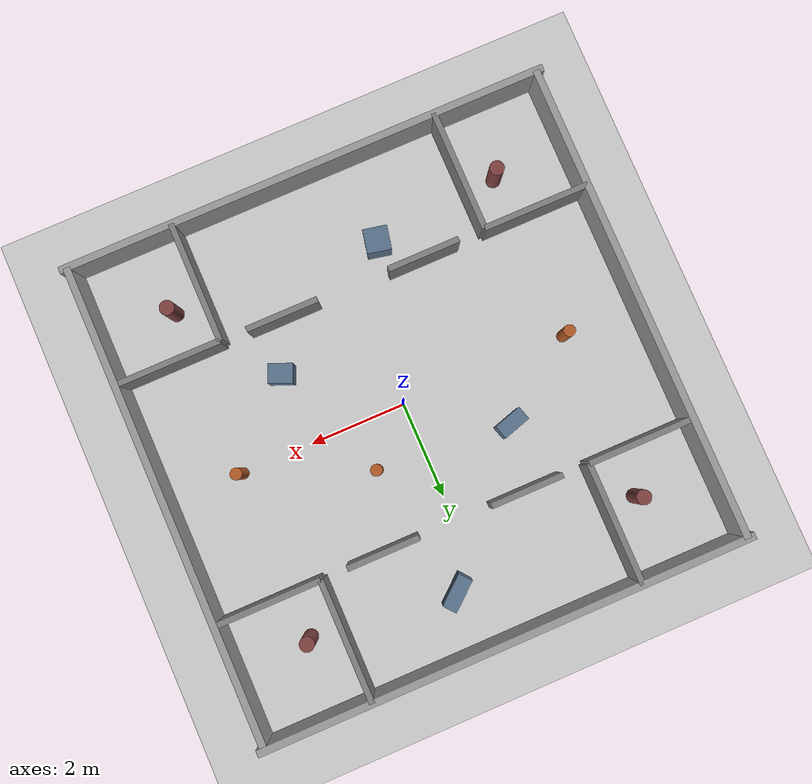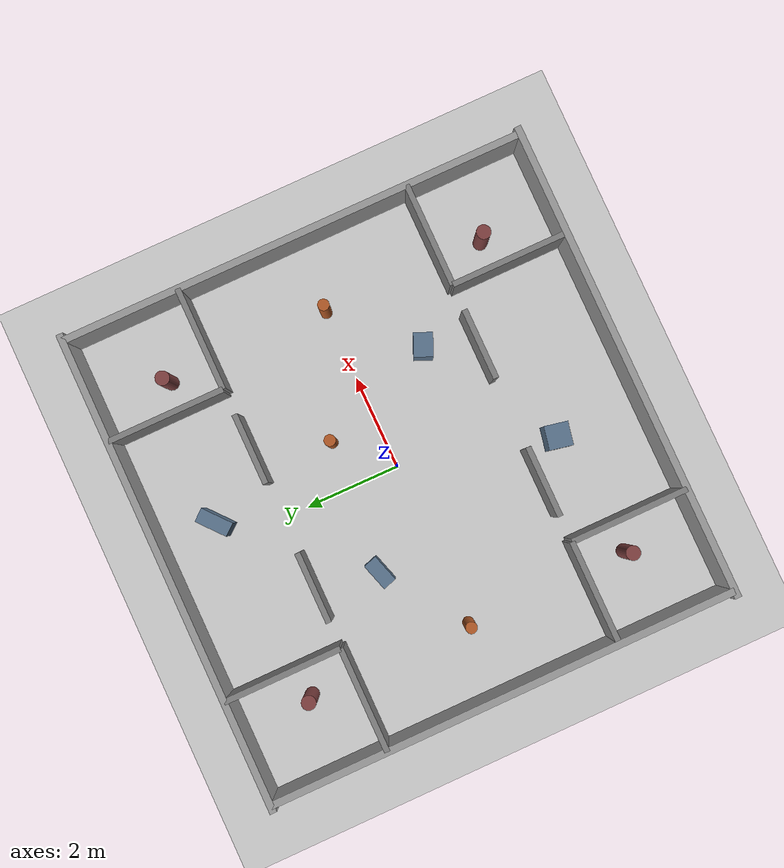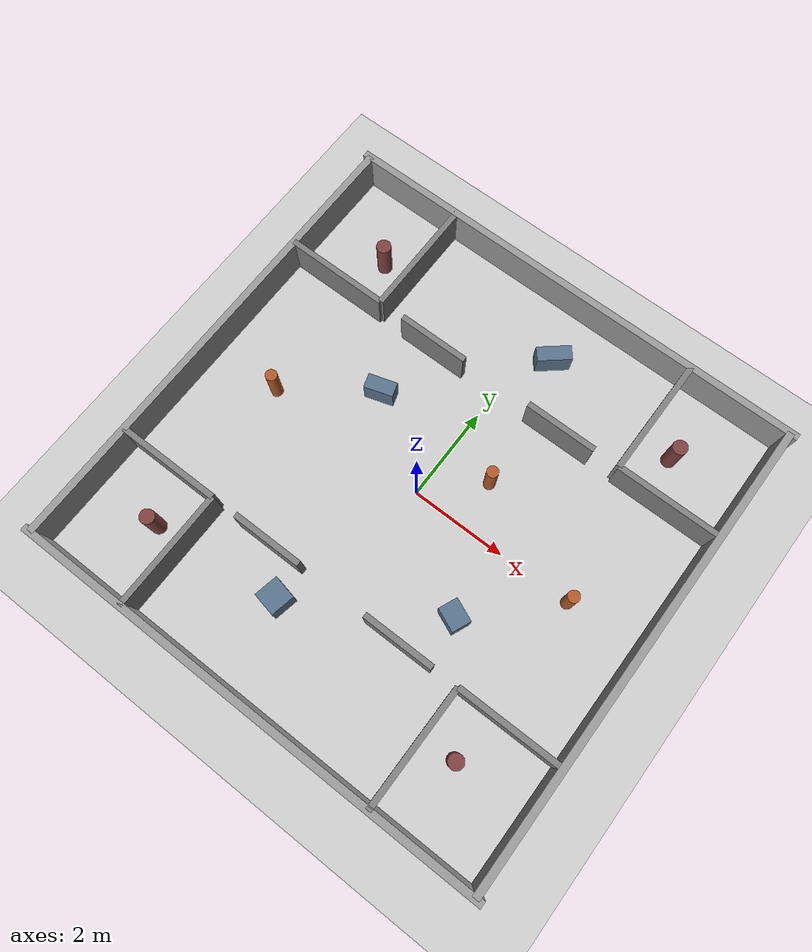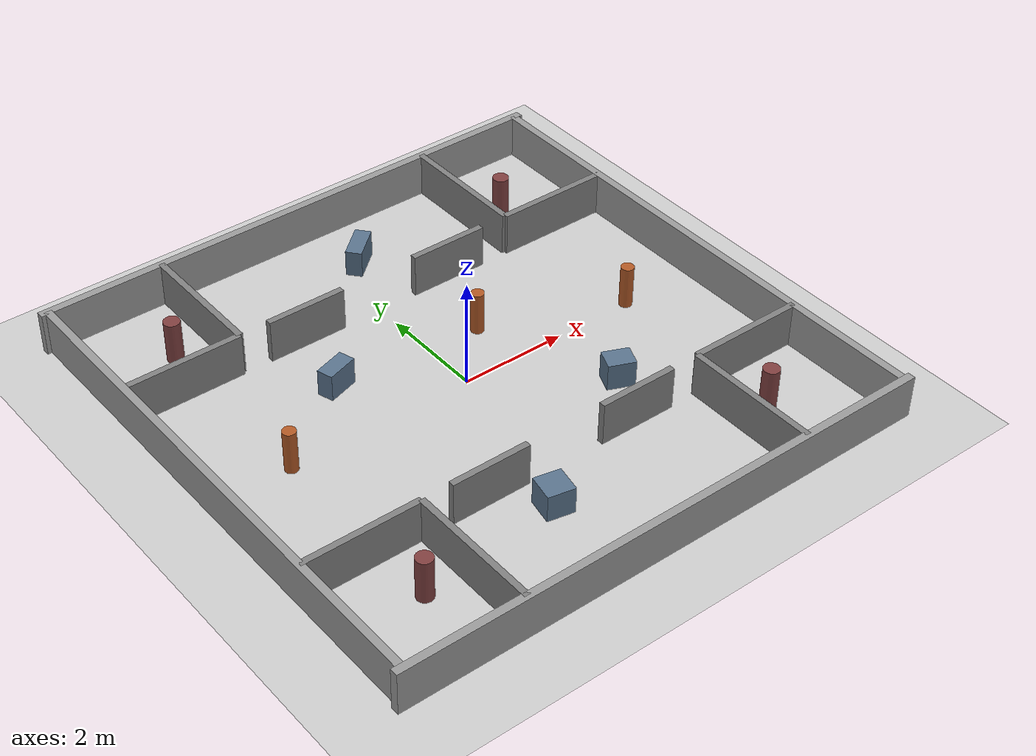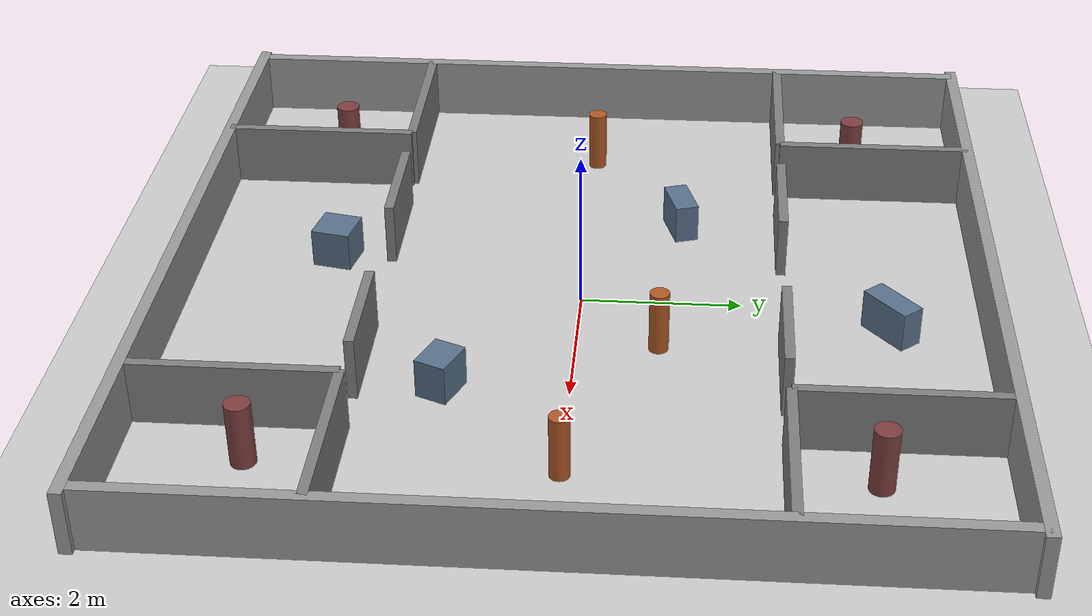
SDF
<?xml version="1.0"?>
<sdf version="1.6">
  <world name="static_arena">
    <!-- Same arena layout as tubitak phase3_arena: 10x10m with static obstacles -->

    <physics type="ode">
      <real_time_update_rate>1000</real_time_update_rate>
      <max_step_size>0.001</max_step_size>
      <real_time_factor>1</real_time_factor>
      <ode>
        <solver>
          <type>quick</type>
          <iters>150</iters>
          <sor>1.4</sor>
          <use_dynamic_moi_rescaling>1</use_dynamic_moi_rescaling>
        </solver>
      </ode>
    </physics>

    <plugin name="gazebo_ros_state" filename="libgazebo_ros_state.so">
      <update_rate>25</update_rate>
    </plugin>

    <scene>
      <shadows>0</shadows>
      <ambient>0.4 0.4 0.4 1</ambient>
      <background>0.7 0.7 0.7 1</background>
    </scene>

    <light name="sun" type="directional">
      <cast_shadows>1</cast_shadows>
      <pose>0 0 10 0 0 0</pose>
      <diffuse>0.8 0.8 0.8 1</diffuse>
      <specular>0.2 0.2 0.2 1</specular>
      <direction>-0.5 0.1 -0.9</direction>
    </light>

    <gui fullscreen="0">
      <camera name="user_camera">
        <pose>0 -12 20 0 1.0 1.57</pose>
        <view_controller>orbit</view_controller>
      </camera>
    </gui>

    <!-- Ground plane -->
    <model name="ground_plane">
      <static>true</static>
      <link name="link">
        <collision name="collision">
          <geometry><plane><normal>0 0 1</normal><size>100 100</size></plane></geometry>
          <surface><friction><ode><mu>100</mu><mu2>50</mu2></ode></friction></surface>
        </collision>
        <visual name="visual">
          <cast_shadows>0</cast_shadows>
          <geometry><plane><normal>0 0 1</normal><size>100 100</size></plane></geometry>
          <material>
            <ambient>0.8 0.8 0.8 1</ambient>
            <diffuse>0.8 0.8 0.8 1</diffuse>
          </material>
        </visual>
      </link>
    </model>

    <!-- ══════════════ Outer walls (10x10m arena) ══════════════ -->
    <model name="wN">
      <static>true</static>
      <pose>0 5 0.4 0 0 0</pose>
      <link name="l">
        <collision name="c"><geometry><box><size>10.3 0.15 0.8</size></box></geometry></collision>
        <visual name="v">
          <geometry><box><size>10.3 0.15 0.8</size></box></geometry>
          <material><ambient>0.6 0.6 0.6 1</ambient><diffuse>0.6 0.6 0.6 1</diffuse></material>
        </visual>
      </link>
    </model>

    <model name="wS">
      <static>true</static>
      <pose>0 -5 0.4 0 0 0</pose>
      <link name="l">
        <collision name="c"><geometry><box><size>10.3 0.15 0.8</size></box></geometry></collision>
        <visual name="v">
          <geometry><box><size>10.3 0.15 0.8</size></box></geometry>
          <material><ambient>0.6 0.6 0.6 1</ambient><diffuse>0.6 0.6 0.6 1</diffuse></material>
        </visual>
      </link>
    </model>

    <model name="wE">
      <static>true</static>
      <pose>5 0 0.4 0 0 0</pose>
      <link name="l">
        <collision name="c"><geometry><box><size>0.15 10 0.8</size></box></geometry></collision>
        <visual name="v">
          <geometry><box><size>0.15 10 0.8</size></box></geometry>
          <material><ambient>0.6 0.6 0.6 1</ambient><diffuse>0.6 0.6 0.6 1</diffuse></material>
        </visual>
      </link>
    </model>

    <model name="wW">
      <static>true</static>
      <pose>-5 0 0.4 0 0 0</pose>
      <link name="l">
        <collision name="c"><geometry><box><size>0.15 10 0.8</size></box></geometry></collision>
        <visual name="v">
          <geometry><box><size>0.15 10 0.8</size></box></geometry>
          <material><ambient>0.6 0.6 0.6 1</ambient><diffuse>0.6 0.6 0.6 1</diffuse></material>
        </visual>
      </link>
    </model>

    <!-- ══════════════ Diagonal divider walls (upper half) ══════════════ -->
    <model name="dU_L">
      <static>true</static>
      <pose>-3.9 2.5 0.4 0 0 0</pose>
      <link name="l">
        <collision name="c"><geometry><box><size>2.2 0.12 0.8</size></box></geometry></collision>
        <visual name="v">
          <geometry><box><size>2.2 0.12 0.8</size></box></geometry>
          <material><ambient>0.5 0.5 0.5 1</ambient><diffuse>0.5 0.5 0.5 1</diffuse></material>
        </visual>
      </link>
    </model>

    <model name="dU_R">
      <static>true</static>
      <pose>3.9 2.5 0.4 0 0 0</pose>
      <link name="l">
        <collision name="c"><geometry><box><size>2.2 0.12 0.8</size></box></geometry></collision>
        <visual name="v">
          <geometry><box><size>2.2 0.12 0.8</size></box></geometry>
          <material><ambient>0.5 0.5 0.5 1</ambient><diffuse>0.5 0.5 0.5 1</diffuse></material>
        </visual>
      </link>
    </model>

    <model name="dU_CL">
      <static>true</static>
      <pose>-1.5 2.5 0.4 0 0 0</pose>
      <link name="l">
        <collision name="c"><geometry><box><size>1.5 0.12 0.8</size></box></geometry></collision>
        <visual name="v">
          <geometry><box><size>1.5 0.12 0.8</size></box></geometry>
          <material><ambient>0.5 0.5 0.5 1</ambient><diffuse>0.5 0.5 0.5 1</diffuse></material>
        </visual>
      </link>
    </model>

    <model name="dU_CR">
      <static>true</static>
      <pose>1.5 2.5 0.4 0 0 0</pose>
      <link name="l">
        <collision name="c"><geometry><box><size>1.5 0.12 0.8</size></box></geometry></collision>
        <visual name="v">
          <geometry><box><size>1.5 0.12 0.8</size></box></geometry>
          <material><ambient>0.5 0.5 0.5 1</ambient><diffuse>0.5 0.5 0.5 1</diffuse></material>
        </visual>
      </link>
    </model>

    <!-- ══════════════ Diagonal divider walls (lower half) ══════════════ -->
    <model name="dD_L">
      <static>true</static>
      <pose>-3.9 -2.5 0.4 0 0 0</pose>
      <link name="l">
        <collision name="c"><geometry><box><size>2.2 0.12 0.8</size></box></geometry></collision>
        <visual name="v">
          <geometry><box><size>2.2 0.12 0.8</size></box></geometry>
          <material><ambient>0.5 0.5 0.5 1</ambient><diffuse>0.5 0.5 0.5 1</diffuse></material>
        </visual>
      </link>
    </model>

    <model name="dD_R">
      <static>true</static>
      <pose>3.9 -2.5 0.4 0 0 0</pose>
      <link name="l">
        <collision name="c"><geometry><box><size>2.2 0.12 0.8</size></box></geometry></collision>
        <visual name="v">
          <geometry><box><size>2.2 0.12 0.8</size></box></geometry>
          <material><ambient>0.5 0.5 0.5 1</ambient><diffuse>0.5 0.5 0.5 1</diffuse></material>
        </visual>
      </link>
    </model>

    <model name="dD_CL">
      <static>true</static>
      <pose>-1.5 -2.5 0.4 0 0 0</pose>
      <link name="l">
        <collision name="c"><geometry><box><size>1.5 0.12 0.8</size></box></geometry></collision>
        <visual name="v">
          <geometry><box><size>1.5 0.12 0.8</size></box></geometry>
          <material><ambient>0.5 0.5 0.5 1</ambient><diffuse>0.5 0.5 0.5 1</diffuse></material>
        </visual>
      </link>
    </model>

    <model name="dD_CR">
      <static>true</static>
      <pose>1.5 -2.5 0.4 0 0 0</pose>
      <link name="l">
        <collision name="c"><geometry><box><size>1.5 0.12 0.8</size></box></geometry></collision>
        <visual name="v">
          <geometry><box><size>1.5 0.12 0.8</size></box></geometry>
          <material><ambient>0.5 0.5 0.5 1</ambient><diffuse>0.5 0.5 0.5 1</diffuse></material>
        </visual>
      </link>
    </model>

    <!-- ══════════════ Inner corridor walls ══════════════ -->
    <model name="iU_L">
      <static>true</static>
      <pose>-2.8 3.75 0.4 0 0 0</pose>
      <link name="l">
        <collision name="c"><geometry><box><size>0.12 2.5 0.8</size></box></geometry></collision>
        <visual name="v">
          <geometry><box><size>0.12 2.5 0.8</size></box></geometry>
          <material><ambient>0.5 0.5 0.5 1</ambient><diffuse>0.5 0.5 0.5 1</diffuse></material>
        </visual>
      </link>
    </model>

    <model name="iU_R">
      <static>true</static>
      <pose>2.8 3.75 0.4 0 0 0</pose>
      <link name="l">
        <collision name="c"><geometry><box><size>0.12 2.5 0.8</size></box></geometry></collision>
        <visual name="v">
          <geometry><box><size>0.12 2.5 0.8</size></box></geometry>
          <material><ambient>0.5 0.5 0.5 1</ambient><diffuse>0.5 0.5 0.5 1</diffuse></material>
        </visual>
      </link>
    </model>

    <model name="iD_L">
      <static>true</static>
      <pose>-2.8 -3.75 0.4 0 0 0</pose>
      <link name="l">
        <collision name="c"><geometry><box><size>0.12 2.5 0.8</size></box></geometry></collision>
        <visual name="v">
          <geometry><box><size>0.12 2.5 0.8</size></box></geometry>
          <material><ambient>0.5 0.5 0.5 1</ambient><diffuse>0.5 0.5 0.5 1</diffuse></material>
        </visual>
      </link>
    </model>

    <model name="iD_R">
      <static>true</static>
      <pose>2.8 -3.75 0.4 0 0 0</pose>
      <link name="l">
        <collision name="c"><geometry><box><size>0.12 2.5 0.8</size></box></geometry></collision>
        <visual name="v">
          <geometry><box><size>0.12 2.5 0.8</size></box></geometry>
          <material><ambient>0.5 0.5 0.5 1</ambient><diffuse>0.5 0.5 0.5 1</diffuse></material>
        </visual>
      </link>
    </model>

    <!-- ══════════════ Vertical obstacle pillars (corners) ══════════════ -->
    <model name="vNL">
      <static>true</static>
      <pose>-3.5 3.5 0.4 0 0 0</pose>
      <link name="l">
        <collision name="c"><geometry><cylinder><radius>0.15</radius><length>0.8</length></cylinder></geometry></collision>
        <visual name="v">
          <geometry><cylinder><radius>0.15</radius><length>0.8</length></cylinder></geometry>
          <material><ambient>0.4 0.2 0.2 1</ambient><diffuse>0.5 0.25 0.25 1</diffuse></material>
        </visual>
      </link>
    </model>

    <model name="vNR">
      <static>true</static>
      <pose>3.5 3.5 0.4 0 0 0</pose>
      <link name="l">
        <collision name="c"><geometry><cylinder><radius>0.15</radius><length>0.8</length></cylinder></geometry></collision>
        <visual name="v">
          <geometry><cylinder><radius>0.15</radius><length>0.8</length></cylinder></geometry>
          <material><ambient>0.4 0.2 0.2 1</ambient><diffuse>0.5 0.25 0.25 1</diffuse></material>
        </visual>
      </link>
    </model>

    <model name="vSL">
      <static>true</static>
      <pose>-3.5 -3.5 0.4 0 0 0</pose>
      <link name="l">
        <collision name="c"><geometry><cylinder><radius>0.15</radius><length>0.8</length></cylinder></geometry></collision>
        <visual name="v">
          <geometry><cylinder><radius>0.15</radius><length>0.8</length></cylinder></geometry>
          <material><ambient>0.4 0.2 0.2 1</ambient><diffuse>0.5 0.25 0.25 1</diffuse></material>
        </visual>
      </link>
    </model>

    <model name="vSR">
      <static>true</static>
      <pose>3.5 -3.5 0.4 0 0 0</pose>
      <link name="l">
        <collision name="c"><geometry><cylinder><radius>0.15</radius><length>0.8</length></cylinder></geometry></collision>
        <visual name="v">
          <geometry><cylinder><radius>0.15</radius><length>0.8</length></cylinder></geometry>
          <material><ambient>0.4 0.2 0.2 1</ambient><diffuse>0.5 0.25 0.25 1</diffuse></material>
        </visual>
      </link>
    </model>

    <!-- ══════════════ Scattered box obstacles ══════════════ -->
    <model name="stA">
      <static>true</static>
      <pose>-1.8 1.2 0.25 0 0 0.3</pose>
      <link name="l">
        <collision name="c"><geometry><box><size>0.6 0.3 0.5</size></box></geometry></collision>
        <visual name="v">
          <geometry><box><size>0.6 0.3 0.5</size></box></geometry>
          <material><ambient>0.3 0.4 0.5 1</ambient><diffuse>0.35 0.45 0.55 1</diffuse></material>
        </visual>
      </link>
    </model>

    <model name="stB">
      <static>true</static>
      <pose>2.0 -1.5 0.25 0 0 -0.4</pose>
      <link name="l">
        <collision name="c"><geometry><box><size>0.5 0.4 0.5</size></box></geometry></collision>
        <visual name="v">
          <geometry><box><size>0.5 0.4 0.5</size></box></geometry>
          <material><ambient>0.3 0.4 0.5 1</ambient><diffuse>0.35 0.45 0.55 1</diffuse></material>
        </visual>
      </link>
    </model>

    <model name="stC">
      <static>true</static>
      <pose>0.5 3.8 0.25 0 0 0.7</pose>
      <link name="l">
        <collision name="c"><geometry><box><size>0.7 0.3 0.5</size></box></geometry></collision>
        <visual name="v">
          <geometry><box><size>0.7 0.3 0.5</size></box></geometry>
          <material><ambient>0.3 0.4 0.5 1</ambient><diffuse>0.35 0.45 0.55 1</diffuse></material>
        </visual>
      </link>
    </model>

    <model name="stD">
      <static>true</static>
      <pose>-0.8 -3.2 0.25 0 0 -0.2</pose>
      <link name="l">
        <collision name="c"><geometry><box><size>0.5 0.5 0.5</size></box></geometry></collision>
        <visual name="v">
          <geometry><box><size>0.5 0.5 0.5</size></box></geometry>
          <material><ambient>0.3 0.4 0.5 1</ambient><diffuse>0.35 0.45 0.55 1</diffuse></material>
        </visual>
      </link>
    </model>

    <!-- ══════════════ Centre-zone cylindrical obstacles ══════════════ -->
    <model name="s1">
      <static>true</static>
      <pose>-3.5 0 0.4 0 0 0</pose>
      <link name="l">
        <collision name="c"><geometry><cylinder><radius>0.12</radius><length>0.8</length></cylinder></geometry></collision>
        <visual name="v">
          <geometry><cylinder><radius>0.12</radius><length>0.8</length></cylinder></geometry>
          <material><ambient>0.6 0.3 0.1 1</ambient><diffuse>0.7 0.35 0.15 1</diffuse></material>
        </visual>
      </link>
    </model>

    <model name="s2">
      <static>true</static>
      <pose>3.5 0 0.4 0 0 0</pose>
      <link name="l">
        <collision name="c"><geometry><cylinder><radius>0.12</radius><length>0.8</length></cylinder></geometry></collision>
        <visual name="v">
          <geometry><cylinder><radius>0.12</radius><length>0.8</length></cylinder></geometry>
          <material><ambient>0.6 0.3 0.1 1</ambient><diffuse>0.7 0.35 0.15 1</diffuse></material>
        </visual>
      </link>
    </model>

    <model name="s3">
      <static>true</static>
      <pose>1.0 1.0 0.4 0 0 0</pose>
      <link name="l">
        <collision name="c"><geometry><cylinder><radius>0.12</radius><length>0.8</length></cylinder></geometry></collision>
        <visual name="v">
          <geometry><cylinder><radius>0.12</radius><length>0.8</length></cylinder></geometry>
          <material><ambient>0.6 0.3 0.1 1</ambient><diffuse>0.7 0.35 0.15 1</diffuse></material>
        </visual>
      </link>
    </model>

  </world>
</sdf>
